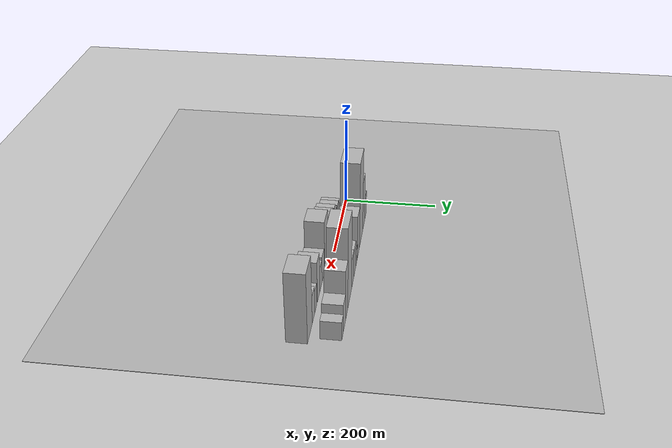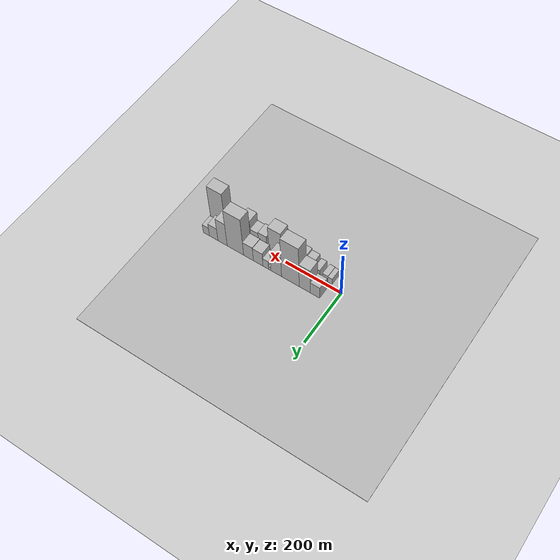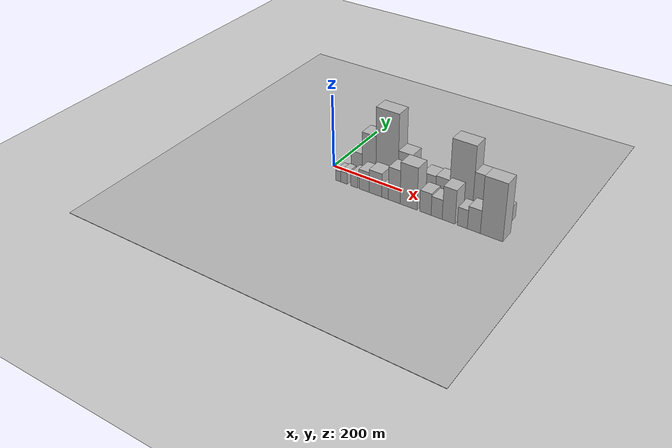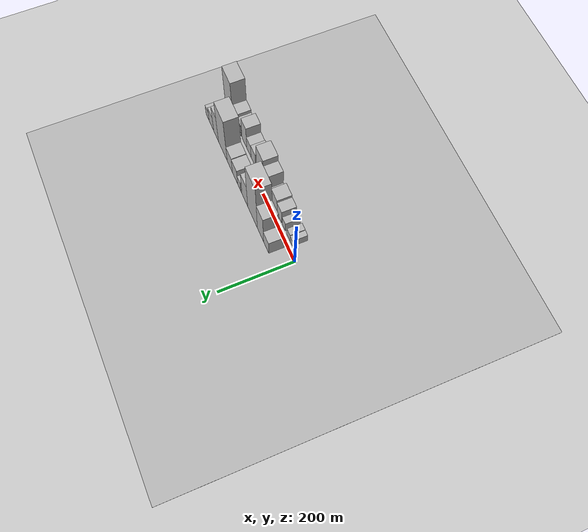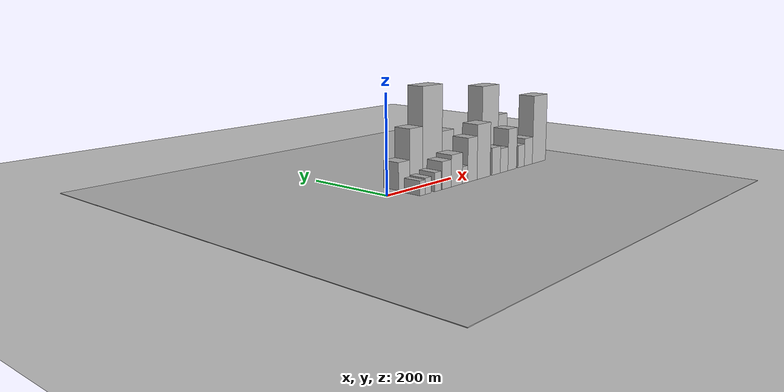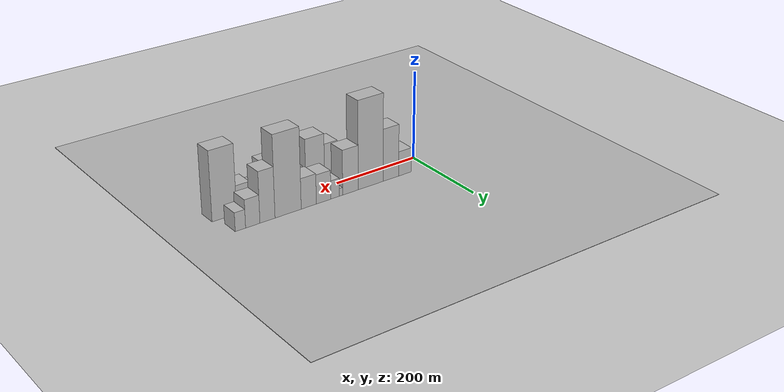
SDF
<?xml version="1.0" encoding="utf-8"?>

<sdf version="1.6">

   <world name="default">

      <gui fullscreen="0">

         <camera name="user_camera">

            <pose>-15 0 4.57585 0 0 0</pose>

            <view_controller>orbit</view_controller>

         </camera>

      </gui>

      <scene>

         <sky>

           <clouds>

             <speed>12</speed>

           </clouds>

         </sky>

         <ambient>0.4 0.4 0.4 1</ambient>

         <background>0.7 0.7 0.7 1</background>

         <shadows>1</shadows>

      </scene>

      <gravity>0 0 -9.8066</gravity>

      <magnetic_field>6e-06 2.3e-05 -4.2e-05</magnetic_field>

      <physics default="0" name="default_physics" type="ode">

         <ode>

            <solver>

               <type>quick</type>

               <iters>10</iters>

               <sor>1.0</sor>

               <use_dynamic_moi_rescaling>0</use_dynamic_moi_rescaling>

            </solver>

            <constraints>

               <cfm>0</cfm>

               <erp>0.2</erp>

               <contact_max_correcting_vel>100</contact_max_correcting_vel>

               <contact_surface_layer>0.001</contact_surface_layer>

            </constraints>

         </ode>

         <max_step_size>0.004</max_step_size>

         <real_time_factor>1</real_time_factor>

         <real_time_update_rate>250</real_time_update_rate>

      </physics>

      <light name="sun" type="directional">

         <cast_shadows>1</cast_shadows>

         <pose>0 0 10 0 0 0</pose>

         <diffuse>0.8 0.8 0.8 1</diffuse>

         <specular>0.2 0.2 0.2 1</specular>

         <attenuation>

            <range>1000</range>

            <constant>0.9</constant>

            <linear>0.01</linear>

            <quadratic>0.001</quadratic>

         </attenuation>

         <direction>-0.5 0.1 -0.9</direction>

      </light>

      <include>

         <name>ground_plane_1</name>

         <uri>model://HANNAS_ground_plane</uri>

         <pose>0 0 0  0 0 0</pose>

      </include>

      <include>

         <name>ground_plane_2</name>

         <uri>model://HANNAS_ground_plane</uri>

         <pose>100 0 0  0 0 0</pose>

      </include>

      <model name="building_1">

         <static>1</static>

         <pose frame="">61.6390 30.0000 0 0.000000 0.000000 1.570796</pose>

         <link name="link">

            <pose frame="">0 0 28.50 0 0 0</pose>

            <collision name="collision">

               <geometry>

                  <box>

                     <size>40.0000 33.2779 57.0000</size>

                  </box>

               </geometry>

               <max_contacts>10</max_contacts>

               <surface>

                  <contact>

                     <ode/>

                  </contact>

                  <bounce/>

                  <friction>

                     <torsional>

                        <ode/>

                     </torsional>

                     <ode/>

                  </friction>

               </surface>

            </collision>

            <visual name="visual">

               <cast_shadows>0</cast_shadows>

               <geometry>

                  <box>

                     <size>40.0000 33.2779 57.0000</size>

                  </box>

               </geometry>

               <material>

                  <script>

                     <uri>model://HANNAS_wall/materials/scripts</uri>

                     <uri>model://HANNAS_wall/materials/textures</uri>

                     <name>vrc/HANNAS_wall</name>

                  </script>

               </material>

            </visual>

            <self_collide>0</self_collide>

            <enable_wind>0</enable_wind>

            <kinematic>0</kinematic>

         </link>

      </model>

      <model name="building_2">

         <static>1</static>

         <pose frame="">98.2500 30.0000 0 0.000000 0.000000 1.570796</pose>

         <link name="link">

            <pose frame="">0 0 60.00 0 0 0</pose>

            <collision name="collision">

               <geometry>

                  <box>

                     <size>40.0000 39.9442 120.0000</size>

                  </box>

               </geometry>

               <max_contacts>10</max_contacts>

               <surface>

                  <contact>

                     <ode/>

                  </contact>

                  <bounce/>

                  <friction>

                     <torsional>

                        <ode/>

                     </torsional>

                     <ode/>

                  </friction>

               </surface>

            </collision>

            <visual name="visual">

               <cast_shadows>0</cast_shadows>

               <geometry>

                  <box>

                     <size>40.0000 39.9442 120.0000</size>

                  </box>

               </geometry>

               <material>

                  <script>

                     <uri>model://HANNAS_wall/materials/scripts</uri>

                     <uri>model://HANNAS_wall/materials/textures</uri>

                     <name>vrc/HANNAS_wall</name>

                  </script>

               </material>

            </visual>

            <self_collide>0</self_collide>

            <enable_wind>0</enable_wind>

            <kinematic>0</kinematic>

         </link>

      </model>

      <model name="building_3">

         <static>1</static>

         <pose frame="">150.0507 30.0000 0 0.000000 0.000000 1.570796</pose>

         <link name="link">

            <pose frame="">0 0 100.50 0 0 0</pose>

            <collision name="collision">

               <geometry>

                  <box>

                     <size>40.0000 63.6570 201.0000</size>

                  </box>

               </geometry>

               <max_contacts>10</max_contacts>

               <surface>

                  <contact>

                     <ode/>

                  </contact>

                  <bounce/>

                  <friction>

                     <torsional>

                        <ode/>

                     </torsional>

                     <ode/>

                  </friction>

               </surface>

            </collision>

            <visual name="visual">

               <cast_shadows>0</cast_shadows>

               <geometry>

                  <box>

                     <size>40.0000 63.6570 201.0000</size>

                  </box>

               </geometry>

               <material>

                  <script>

                     <uri>model://HANNAS_wall/materials/scripts</uri>

                     <uri>model://HANNAS_wall/materials/textures</uri>

                     <name>vrc/HANNAS_wall</name>

                  </script>

               </material>

            </visual>

            <self_collide>0</self_collide>

            <enable_wind>0</enable_wind>

            <kinematic>0</kinematic>

         </link>

      </model>

      <model name="building_4">

         <static>1</static>

         <pose frame="">201.3103 30.0000 0 0.000000 0.000000 1.570796</pose>

         <link name="link">

            <pose frame="">0 0 51.00 0 0 0</pose>

            <collision name="collision">

               <geometry>

                  <box>

                     <size>40.0000 38.8623 102.0000</size>

                  </box>

               </geometry>

               <max_contacts>10</max_contacts>

               <surface>

                  <contact>

                     <ode/>

                  </contact>

                  <bounce/>

                  <friction>

                     <torsional>

                        <ode/>

                     </torsional>

                     <ode/>

                  </friction>

               </surface>

            </collision>

            <visual name="visual">

               <cast_shadows>0</cast_shadows>

               <geometry>

                  <box>

                     <size>40.0000 38.8623 102.0000</size>

                  </box>

               </geometry>

               <material>

                  <script>

                     <uri>model://HANNAS_wall/materials/scripts</uri>

                     <uri>model://HANNAS_wall/materials/textures</uri>

                     <name>vrc/HANNAS_wall</name>

                  </script>

               </material>

            </visual>

            <self_collide>0</self_collide>

            <enable_wind>0</enable_wind>

            <kinematic>0</kinematic>

         </link>

      </model>

      <model name="building_5">

         <static>1</static>

         <pose frame="">224.8740 30.0000 0 0.000000 0.000000 1.570796</pose>

         <link name="link">

            <pose frame="">0 0 9.00 0 0 0</pose>

            <collision name="collision">

               <geometry>

                  <box>

                     <size>40.0000 8.2650 18.0000</size>

                  </box>

               </geometry>

               <max_contacts>10</max_contacts>

               <surface>

                  <contact>

                     <ode/>

                  </contact>

                  <bounce/>

                  <friction>

                     <torsional>

                        <ode/>

                     </torsional>

                     <ode/>

                  </friction>

               </surface>

            </collision>

            <visual name="visual">

               <cast_shadows>0</cast_shadows>

               <geometry>

                  <box>

                     <size>40.0000 8.2650 18.0000</size>

                  </box>

               </geometry>

               <material>

                  <script>

                     <uri>model://HANNAS_wall/materials/scripts</uri>

                     <uri>model://HANNAS_wall/materials/textures</uri>

                     <name>vrc/HANNAS_wall</name>

                  </script>

               </material>

            </visual>

            <self_collide>0</self_collide>

            <enable_wind>0</enable_wind>

            <kinematic>0</kinematic>

         </link>

      </model>

      <model name="building_6">

         <static>1</static>

         <pose frame="">239.5256 30.0000 0 0.000000 0.000000 1.570796</pose>

         <link name="link">

            <pose frame="">0 0 21.00 0 0 0</pose>

            <collision name="collision">

               <geometry>

                  <box>

                     <size>40.0000 21.0382 42.0000</size>

                  </box>

               </geometry>

               <max_contacts>10</max_contacts>

               <surface>

                  <contact>

                     <ode/>

                  </contact>

                  <bounce/>

                  <friction>

                     <torsional>

                        <ode/>

                     </torsional>

                     <ode/>

                  </friction>

               </surface>

            </collision>

            <visual name="visual">

               <cast_shadows>0</cast_shadows>

               <geometry>

                  <box>

                     <size>40.0000 21.0382 42.0000</size>

                  </box>

               </geometry>

               <material>

                  <script>

                     <uri>model://HANNAS_wall/materials/scripts</uri>

                     <uri>model://HANNAS_wall/materials/textures</uri>

                     <name>vrc/HANNAS_wall</name>

                  </script>

               </material>

            </visual>

            <self_collide>0</self_collide>

            <enable_wind>0</enable_wind>

            <kinematic>0</kinematic>

         </link>

      </model>

      <model name="building_7">

         <static>1</static>

         <pose frame="">267.7316 30.0000 0 0.000000 0.000000 1.570796</pose>

         <link name="link">

            <pose frame="">0 0 33.00 0 0 0</pose>

            <collision name="collision">

               <geometry>

                  <box>

                     <size>40.0000 35.3738 66.0000</size>

                  </box>

               </geometry>

               <max_contacts>10</max_contacts>

               <surface>

                  <contact>

                     <ode/>

                  </contact>

                  <bounce/>

                  <friction>

                     <torsional>

                        <ode/>

                     </torsional>

                     <ode/>

                  </friction>

               </surface>

            </collision>

            <visual name="visual">

               <cast_shadows>0</cast_shadows>

               <geometry>

                  <box>

                     <size>40.0000 35.3738 66.0000</size>

                  </box>

               </geometry>

               <material>

                  <script>

                     <uri>model://HANNAS_wall/materials/scripts</uri>

                     <uri>model://HANNAS_wall/materials/textures</uri>

                     <name>vrc/HANNAS_wall</name>

                  </script>

               </material>

            </visual>

            <self_collide>0</self_collide>

            <enable_wind>0</enable_wind>

            <kinematic>0</kinematic>

         </link>

      </model>

      <model name="building_8">

         <static>1</static>

         <pose frame="">303.6206 30.0000 0 0.000000 0.000000 1.570796</pose>

         <link name="link">

            <pose frame="">0 0 34.50 0 0 0</pose>

            <collision name="collision">

               <geometry>

                  <box>

                     <size>40.0000 36.4042 69.0000</size>

                  </box>

               </geometry>

               <max_contacts>10</max_contacts>

               <surface>

                  <contact>

                     <ode/>

                  </contact>

                  <bounce/>

                  <friction>

                     <torsional>

                        <ode/>

                     </torsional>

                     <ode/>

                  </friction>

               </surface>

            </collision>

            <visual name="visual">

               <cast_shadows>0</cast_shadows>

               <geometry>

                  <box>

                     <size>40.0000 36.4042 69.0000</size>

                  </box>

               </geometry>

               <material>

                  <script>

                     <uri>model://HANNAS_wall/materials/scripts</uri>

                     <uri>model://HANNAS_wall/materials/textures</uri>

                     <name>vrc/HANNAS_wall</name>

                  </script>

               </material>

            </visual>

            <self_collide>0</self_collide>

            <enable_wind>0</enable_wind>

            <kinematic>0</kinematic>

         </link>

      </model>

      <model name="building_9">

         <static>1</static>

         <pose frame="">352.7434 30.0000 0 0.000000 0.000000 1.570796</pose>

         <link name="link">

            <pose frame="">0 0 91.50 0 0 0</pose>

            <collision name="collision">

               <geometry>

                  <box>

                     <size>40.0000 61.8414 183.0000</size>

                  </box>

               </geometry>

               <max_contacts>10</max_contacts>

               <surface>

                  <contact>

                     <ode/>

                  </contact>

                  <bounce/>

                  <friction>

                     <torsional>

                        <ode/>

                     </torsional>

                     <ode/>

                  </friction>

               </surface>

            </collision>

            <visual name="visual">

               <cast_shadows>0</cast_shadows>

               <geometry>

                  <box>

                     <size>40.0000 61.8414 183.0000</size>

                  </box>

               </geometry>

               <material>

                  <script>

                     <uri>model://HANNAS_wall/materials/scripts</uri>

                     <uri>model://HANNAS_wall/materials/textures</uri>

                     <name>vrc/HANNAS_wall</name>

                  </script>

               </material>

            </visual>

            <self_collide>0</self_collide>

            <enable_wind>0</enable_wind>

            <kinematic>0</kinematic>

         </link>

      </model>

      <model name="building_10">

         <static>1</static>

         <pose frame="">401.1402 30.0000 0 0.000000 0.000000 1.570796</pose>

         <link name="link">

            <pose frame="">0 0 57.00 0 0 0</pose>

            <collision name="collision">

               <geometry>

                  <box>

                     <size>40.0000 34.9523 114.0000</size>

                  </box>

               </geometry>

               <max_contacts>10</max_contacts>

               <surface>

                  <contact>

                     <ode/>

                  </contact>

                  <bounce/>

                  <friction>

                     <torsional>

                        <ode/>

                     </torsional>

                     <ode/>

                  </friction>

               </surface>

            </collision>

            <visual name="visual">

               <cast_shadows>0</cast_shadows>

               <geometry>

                  <box>

                     <size>40.0000 34.9523 114.0000</size>

                  </box>

               </geometry>

               <material>

                  <script>

                     <uri>model://HANNAS_wall/materials/scripts</uri>

                     <uri>model://HANNAS_wall/materials/textures</uri>

                     <name>vrc/HANNAS_wall</name>

                  </script>

               </material>

            </visual>

            <self_collide>0</self_collide>

            <enable_wind>0</enable_wind>

            <kinematic>0</kinematic>

         </link>

      </model>

      <model name="building_11">

         <static>1</static>

         <pose frame="">435.0475 30.0000 0 0.000000 0.000000 1.570796</pose>

         <link name="link">

            <pose frame="">0 0 31.50 0 0 0</pose>

            <collision name="collision">

               <geometry>

                  <box>

                     <size>40.0000 32.8624 63.0000</size>

                  </box>

               </geometry>

               <max_contacts>10</max_contacts>

               <surface>

                  <contact>

                     <ode/>

                  </contact>

                  <bounce/>

                  <friction>

                     <torsional>

                        <ode/>

                     </torsional>

                     <ode/>

                  </friction>

               </surface>

            </collision>

            <visual name="visual">

               <cast_shadows>0</cast_shadows>

               <geometry>

                  <box>

                     <size>40.0000 32.8624 63.0000</size>

                  </box>

               </geometry>

               <material>

                  <script>

                     <uri>model://HANNAS_wall/materials/scripts</uri>

                     <uri>model://HANNAS_wall/materials/textures</uri>

                     <name>vrc/HANNAS_wall</name>

                  </script>

               </material>

            </visual>

            <self_collide>0</self_collide>

            <enable_wind>0</enable_wind>

            <kinematic>0</kinematic>

         </link>

      </model>

      <model name="building_12">

         <static>1</static>

         <pose frame="">463.2042 30.0000 0 0.000000 0.000000 1.570796</pose>

         <link name="link">

            <pose frame="">0 0 21.00 0 0 0</pose>

            <collision name="collision">

               <geometry>

                  <box>

                     <size>40.0000 23.4510 42.0000</size>

                  </box>

               </geometry>

               <max_contacts>10</max_contacts>

               <surface>

                  <contact>

                     <ode/>

                  </contact>

                  <bounce/>

                  <friction>

                     <torsional>

                        <ode/>

                     </torsional>

                     <ode/>

                  </friction>

               </surface>

            </collision>

            <visual name="visual">

               <cast_shadows>0</cast_shadows>

               <geometry>

                  <box>

                     <size>40.0000 23.4510 42.0000</size>

                  </box>

               </geometry>

               <material>

                  <script>

                     <uri>model://HANNAS_wall/materials/scripts</uri>

                     <uri>model://HANNAS_wall/materials/textures</uri>

                     <name>vrc/HANNAS_wall</name>

                  </script>

               </material>

            </visual>

            <self_collide>0</self_collide>

            <enable_wind>0</enable_wind>

            <kinematic>0</kinematic>

         </link>

      </model>

      <model name="building_13">

         <static>1</static>

         <pose frame="">47.6130 -30.0000 0 0.000000 0.000000 1.570796</pose>

         <link name="link">

            <pose frame="">0 0 15.00 0 0 0</pose>

            <collision name="collision">

               <geometry>

                  <box>

                     <size>40.0000 15.2260 30.0000</size>

                  </box>

               </geometry>

               <max_contacts>10</max_contacts>

               <surface>

                  <contact>

                     <ode/>

                  </contact>

                  <bounce/>

                  <friction>

                     <torsional>

                        <ode/>

                     </torsional>

                     <ode/>

                  </friction>

               </surface>

            </collision>

            <visual name="visual">

               <cast_shadows>0</cast_shadows>

               <geometry>

                  <box>

                     <size>40.0000 15.2260 30.0000</size>

                  </box>

               </geometry>

               <material>

                  <script>

                     <uri>model://HANNAS_wall/materials/scripts</uri>

                     <uri>model://HANNAS_wall/materials/textures</uri>

                     <name>vrc/HANNAS_wall</name>

                  </script>

               </material>

            </visual>

            <self_collide>0</self_collide>

            <enable_wind>0</enable_wind>

            <kinematic>0</kinematic>

         </link>

      </model>

      <model name="building_14">

         <static>1</static>

         <pose frame="">64.8836 -30.0000 0 0.000000 0.000000 1.570796</pose>

         <link name="link">

            <pose frame="">0 0 16.50 0 0 0</pose>

            <collision name="collision">

               <geometry>

                  <box>

                     <size>40.0000 19.3153 33.0000</size>

                  </box>

               </geometry>

               <max_contacts>10</max_contacts>

               <surface>

                  <contact>

                     <ode/>

                  </contact>

                  <bounce/>

                  <friction>

                     <torsional>

                        <ode/>

                     </torsional>

                     <ode/>

                  </friction>

               </surface>

            </collision>

            <visual name="visual">

               <cast_shadows>0</cast_shadows>

               <geometry>

                  <box>

                     <size>40.0000 19.3153 33.0000</size>

                  </box>

               </geometry>

               <material>

                  <script>

                     <uri>model://HANNAS_wall/materials/scripts</uri>

                     <uri>model://HANNAS_wall/materials/textures</uri>

                     <name>vrc/HANNAS_wall</name>

                  </script>

               </material>

            </visual>

            <self_collide>0</self_collide>

            <enable_wind>0</enable_wind>

            <kinematic>0</kinematic>

         </link>

      </model>

      <model name="building_15">

         <static>1</static>

         <pose frame="">94.4927 -30.0000 0 0.000000 0.000000 1.570796</pose>

         <link name="link">

            <pose frame="">0 0 19.50 0 0 0</pose>

            <collision name="collision">

               <geometry>

                  <box>

                     <size>40.0000 19.9028 39.0000</size>

                  </box>

               </geometry>

               <max_contacts>10</max_contacts>

               <surface>

                  <contact>

                     <ode/>

                  </contact>

                  <bounce/>

                  <friction>

                     <torsional>

                        <ode/>

                     </torsional>

                     <ode/>

                  </friction>

               </surface>

            </collision>

            <visual name="visual">

               <cast_shadows>0</cast_shadows>

               <geometry>

                  <box>

                     <size>40.0000 19.9028 39.0000</size>

                  </box>

               </geometry>

               <material>

                  <script>

                     <uri>model://HANNAS_wall/materials/scripts</uri>

                     <uri>model://HANNAS_wall/materials/textures</uri>

                     <name>vrc/HANNAS_wall</name>

                  </script>

               </material>

            </visual>

            <self_collide>0</self_collide>

            <enable_wind>0</enable_wind>

            <kinematic>0</kinematic>

         </link>

      </model>

      <model name="building_16">

         <static>1</static>

         <pose frame="">122.7607 -30.0000 0 0.000000 0.000000 1.570796</pose>

         <link name="link">

            <pose frame="">0 0 28.50 0 0 0</pose>

            <collision name="collision">

               <geometry>

                  <box>

                     <size>40.0000 28.6332 57.0000</size>

                  </box>

               </geometry>

               <max_contacts>10</max_contacts>

               <surface>

                  <contact>

                     <ode/>

                  </contact>

                  <bounce/>

                  <friction>

                     <torsional>

                        <ode/>

                     </torsional>

                     <ode/>

                  </friction>

               </surface>

            </collision>

            <visual name="visual">

               <cast_shadows>0</cast_shadows>

               <geometry>

                  <box>

                     <size>40.0000 28.6332 57.0000</size>

                  </box>

               </geometry>

               <material>

                  <script>

                     <uri>model://HANNAS_wall/materials/scripts</uri>

                     <uri>model://HANNAS_wall/materials/textures</uri>

                     <name>vrc/HANNAS_wall</name>

                  </script>

               </material>

            </visual>

            <self_collide>0</self_collide>

            <enable_wind>0</enable_wind>

            <kinematic>0</kinematic>

         </link>

      </model>

      <model name="building_17">

         <static>1</static>

         <pose frame="">155.3288 -30.0000 0 0.000000 0.000000 1.570796</pose>

         <link name="link">

            <pose frame="">0 0 33.00 0 0 0</pose>

            <collision name="collision">

               <geometry>

                  <box>

                     <size>40.0000 36.5030 66.0000</size>

                  </box>

               </geometry>

               <max_contacts>10</max_contacts>

               <surface>

                  <contact>

                     <ode/>

                  </contact>

                  <bounce/>

                  <friction>

                     <torsional>

                        <ode/>

                     </torsional>

                     <ode/>

                  </friction>

               </surface>

            </collision>

            <visual name="visual">

               <cast_shadows>0</cast_shadows>

               <geometry>

                  <box>

                     <size>40.0000 36.5030 66.0000</size>

                  </box>

               </geometry>

               <material>

                  <script>

                     <uri>model://HANNAS_wall/materials/scripts</uri>

                     <uri>model://HANNAS_wall/materials/textures</uri>

                     <name>vrc/HANNAS_wall</name>

                  </script>

               </material>

            </visual>

            <self_collide>0</self_collide>

            <enable_wind>0</enable_wind>

            <kinematic>0</kinematic>

         </link>

      </model>

      <model name="building_18">

         <static>1</static>

         <pose frame="">182.5957 -30.0000 0 0.000000 0.000000 1.570796</pose>

         <link name="link">

            <pose frame="">0 0 18.00 0 0 0</pose>

            <collision name="collision">

               <geometry>

                  <box>

                     <size>40.0000 18.0307 36.0000</size>

                  </box>

               </geometry>

               <max_contacts>10</max_contacts>

               <surface>

                  <contact>

                     <ode/>

                  </contact>

                  <bounce/>

                  <friction>

                     <torsional>

                        <ode/>

                     </torsional>

                     <ode/>

                  </friction>

               </surface>

            </collision>

            <visual name="visual">

               <cast_shadows>0</cast_shadows>

               <geometry>

                  <box>

                     <size>40.0000 18.0307 36.0000</size>

                  </box>

               </geometry>

               <material>

                  <script>

                     <uri>model://HANNAS_wall/materials/scripts</uri>

                     <uri>model://HANNAS_wall/materials/textures</uri>

                     <name>vrc/HANNAS_wall</name>

                  </script>

               </material>

            </visual>

            <self_collide>0</self_collide>

            <enable_wind>0</enable_wind>

            <kinematic>0</kinematic>

         </link>

      </model>

      <model name="building_19">

         <static>1</static>

         <pose frame="">207.8779 -30.0000 0 0.000000 0.000000 1.570796</pose>

         <link name="link">

            <pose frame="">0 0 46.50 0 0 0</pose>

            <collision name="collision">

               <geometry>

                  <box>

                     <size>40.0000 32.5338 93.0000</size>

                  </box>

               </geometry>

               <max_contacts>10</max_contacts>

               <surface>

                  <contact>

                     <ode/>

                  </contact>

                  <bounce/>

                  <friction>

                     <torsional>

                        <ode/>

                     </torsional>

                     <ode/>

                  </friction>

               </surface>

            </collision>

            <visual name="visual">

               <cast_shadows>0</cast_shadows>

               <geometry>

                  <box>

                     <size>40.0000 32.5338 93.0000</size>

                  </box>

               </geometry>

               <material>

                  <script>

                     <uri>model://HANNAS_wall/materials/scripts</uri>

                     <uri>model://HANNAS_wall/materials/textures</uri>

                     <name>vrc/HANNAS_wall</name>

                  </script>

               </material>

            </visual>

            <self_collide>0</self_collide>

            <enable_wind>0</enable_wind>

            <kinematic>0</kinematic>

         </link>

      </model>

      <model name="building_20">

         <static>1</static>

         <pose frame="">247.3973 -30.0000 0 0.000000 0.000000 1.570796</pose>

         <link name="link">

            <pose frame="">0 0 58.50 0 0 0</pose>

            <collision name="collision">

               <geometry>

                  <box>

                     <size>40.0000 46.5050 117.0000</size>

                  </box>

               </geometry>

               <max_contacts>10</max_contacts>

               <surface>

                  <contact>

                     <ode/>

                  </contact>

                  <bounce/>

                  <friction>

                     <torsional>

                        <ode/>

                     </torsional>

                     <ode/>

                  </friction>

               </surface>

            </collision>

            <visual name="visual">

               <cast_shadows>0</cast_shadows>

               <geometry>

                  <box>

                     <size>40.0000 46.5050 117.0000</size>

                  </box>

               </geometry>

               <material>

                  <script>

                     <uri>model://HANNAS_wall/materials/scripts</uri>

                     <uri>model://HANNAS_wall/materials/textures</uri>

                     <name>vrc/HANNAS_wall</name>

                  </script>

               </material>

            </visual>

            <self_collide>0</self_collide>

            <enable_wind>0</enable_wind>

            <kinematic>0</kinematic>

         </link>

      </model>

      <model name="building_21">

         <static>1</static>

         <pose frame="">292.9589 -30.0000 0 0.000000 0.000000 1.570796</pose>

         <link name="link">

            <pose frame="">0 0 30.00 0 0 0</pose>

            <collision name="collision">

               <geometry>

                  <box>

                     <size>40.0000 30.6181 60.0000</size>

                  </box>

               </geometry>

               <max_contacts>10</max_contacts>

               <surface>

                  <contact>

                     <ode/>

                  </contact>

                  <bounce/>

                  <friction>

                     <torsional>

                        <ode/>

                     </torsional>

                     <ode/>

                  </friction>

               </surface>

            </collision>

            <visual name="visual">

               <cast_shadows>0</cast_shadows>

               <geometry>

                  <box>

                     <size>40.0000 30.6181 60.0000</size>

                  </box>

               </geometry>

               <material>

                  <script>

                     <uri>model://HANNAS_wall/materials/scripts</uri>

                     <uri>model://HANNAS_wall/materials/textures</uri>

                     <name>vrc/HANNAS_wall</name>

                  </script>

               </material>

            </visual>

            <self_collide>0</self_collide>

            <enable_wind>0</enable_wind>

            <kinematic>0</kinematic>

         </link>

      </model>

      <model name="building_22">

         <static>1</static>

         <pose frame="">322.9214 -30.0000 0 0.000000 0.000000 1.570796</pose>

         <link name="link">

            <pose frame="">0 0 27.00 0 0 0</pose>

            <collision name="collision">

               <geometry>

                  <box>

                     <size>40.0000 29.3069 54.0000</size>

                  </box>

               </geometry>

               <max_contacts>10</max_contacts>

               <surface>

                  <contact>

                     <ode/>

                  </contact>

                  <bounce/>

                  <friction>

                     <torsional>

                        <ode/>

                     </torsional>

                     <ode/>

                  </friction>

               </surface>

            </collision>

            <visual name="visual">

               <cast_shadows>0</cast_shadows>

               <geometry>

                  <box>

                     <size>40.0000 29.3069 54.0000</size>

                  </box>

               </geometry>

               <material>

                  <script>

                     <uri>model://HANNAS_wall/materials/scripts</uri>

                     <uri>model://HANNAS_wall/materials/textures</uri>

                     <name>vrc/HANNAS_wall</name>

                  </script>

               </material>

            </visual>

            <self_collide>0</self_collide>

            <enable_wind>0</enable_wind>

            <kinematic>0</kinematic>

         </link>

      </model>

      <model name="building_23">

         <static>1</static>

         <pose frame="">354.3946 -30.0000 0 0.000000 0.000000 1.570796</pose>

         <link name="link">

            <pose frame="">0 0 46.50 0 0 0</pose>

            <collision name="collision">

               <geometry>

                  <box>

                     <size>40.0000 33.6395 93.0000</size>

                  </box>

               </geometry>

               <max_contacts>10</max_contacts>

               <surface>

                  <contact>

                     <ode/>

                  </contact>

                  <bounce/>

                  <friction>

                     <torsional>

                        <ode/>

                     </torsional>

                     <ode/>

                  </friction>

               </surface>

            </collision>

            <visual name="visual">

               <cast_shadows>0</cast_shadows>

               <geometry>

                  <box>

                     <size>40.0000 33.6395 93.0000</size>

                  </box>

               </geometry>

               <material>

                  <script>

                     <uri>model://HANNAS_wall/materials/scripts</uri>

                     <uri>model://HANNAS_wall/materials/textures</uri>

                     <name>vrc/HANNAS_wall</name>

                  </script>

               </material>

            </visual>

            <self_collide>0</self_collide>

            <enable_wind>0</enable_wind>

            <kinematic>0</kinematic>

         </link>

      </model>

      <model name="building_24">

         <static>1</static>

         <pose frame="">389.9804 -30.0000 0 0.000000 0.000000 1.570796</pose>

         <link name="link">

            <pose frame="">0 0 25.50 0 0 0</pose>

            <collision name="collision">

               <geometry>

                  <box>

                     <size>40.0000 25.5323 51.0000</size>

                  </box>

               </geometry>

               <max_contacts>10</max_contacts>

               <surface>

                  <contact>

                     <ode/>

                  </contact>

                  <bounce/>

                  <friction>

                     <torsional>

                        <ode/>

                     </torsional>

                     <ode/>

                  </friction>

               </surface>

            </collision>

            <visual name="visual">

               <cast_shadows>0</cast_shadows>

               <geometry>

                  <box>

                     <size>40.0000 25.5323 51.0000</size>

                  </box>

               </geometry>

               <material>

                  <script>

                     <uri>model://HANNAS_wall/materials/scripts</uri>

                     <uri>model://HANNAS_wall/materials/textures</uri>

                     <name>vrc/HANNAS_wall</name>

                  </script>

               </material>

            </visual>

            <self_collide>0</self_collide>

            <enable_wind>0</enable_wind>

            <kinematic>0</kinematic>

         </link>

      </model>

      <model name="building_25">

         <static>1</static>

         <pose frame="">419.1519 -30.0000 0 0.000000 0.000000 1.570796</pose>

         <link name="link">

            <pose frame="">0 0 31.50 0 0 0</pose>

            <collision name="collision">

               <geometry>

                  <box>

                     <size>40.0000 32.8106 63.0000</size>

                  </box>

               </geometry>

               <max_contacts>10</max_contacts>

               <surface>

                  <contact>

                     <ode/>

                  </contact>

                  <bounce/>

                  <friction>

                     <torsional>

                        <ode/>

                     </torsional>

                     <ode/>

                  </friction>

               </surface>

            </collision>

            <visual name="visual">

               <cast_shadows>0</cast_shadows>

               <geometry>

                  <box>

                     <size>40.0000 32.8106 63.0000</size>

                  </box>

               </geometry>

               <material>

                  <script>

                     <uri>model://HANNAS_wall/materials/scripts</uri>

                     <uri>model://HANNAS_wall/materials/textures</uri>

                     <name>vrc/HANNAS_wall</name>

                  </script>

               </material>

            </visual>

            <self_collide>0</self_collide>

            <enable_wind>0</enable_wind>

            <kinematic>0</kinematic>

         </link>

      </model>

      <model name="building_26">

         <static>1</static>

         <pose frame="">463.6049 -30.0000 0 0.000000 0.000000 1.570796</pose>

         <link name="link">

            <pose frame="">0 0 78.00 0 0 0</pose>

            <collision name="collision">

               <geometry>

                  <box>

                     <size>40.0000 56.0953 156.0000</size>

                  </box>

               </geometry>

               <max_contacts>10</max_contacts>

               <surface>

                  <contact>

                     <ode/>

                  </contact>

                  <bounce/>

                  <friction>

                     <torsional>

                        <ode/>

                     </torsional>

                     <ode/>

                  </friction>

               </surface>

            </collision>

            <visual name="visual">

               <cast_shadows>0</cast_shadows>

               <geometry>

                  <box>

                     <size>40.0000 56.0953 156.0000</size>

                  </box>

               </geometry>

               <material>

                  <script>

                     <uri>model://HANNAS_wall/materials/scripts</uri>

                     <uri>model://HANNAS_wall/materials/textures</uri>

                     <name>vrc/HANNAS_wall</name>

                  </script>

               </material>

            </visual>

            <self_collide>0</self_collide>

            <enable_wind>0</enable_wind>

            <kinematic>0</kinematic>

         </link>

      </model>

   </world>

</sdf>

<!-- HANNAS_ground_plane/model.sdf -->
<sdf version="1.4">
<model name="HANNAS_ground_plane">
  <static>true</static>
    <link name="link">
      <collision name="collision">
        <geometry>
          <plane>
            <normal>0 0 1</normal>
            <size>1000 1000</size>
          </plane>
        </geometry>
        <surface>
          <friction>
            <ode>
              <mu>100</mu>
              <mu2>50</mu2>
            </ode>
          </friction>
        </surface>
      </collision>
      <visual name="visual">
        <cast_shadows>false</cast_shadows>
        <geometry>
          <plane>
            <normal>0 0 1</normal>
            <size>1000 1000</size>
          </plane>
        </geometry>
        <material>
          <script>
            <uri>model://HANNAS_ground_plane/materials/scripts/HANNAS_ground_plane.material</uri>
	    <uri>model://HANNAS_ground_plane/materials/textures</uri>
            <name>HANNASGroundPlane/Image</name>
          </script>
        </material>
      </visual>
    </link>
  </model>
</sdf>
